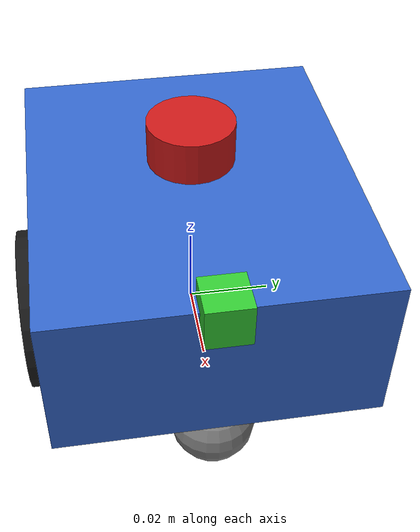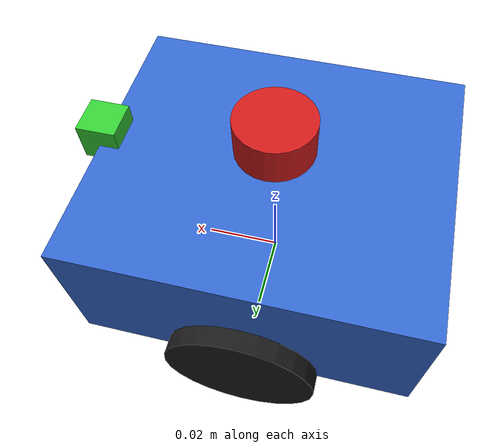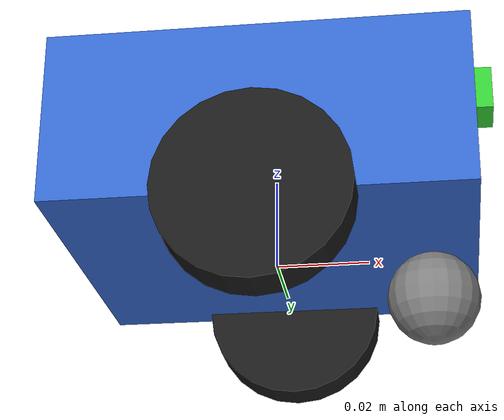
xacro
<?xml version="1.0"?>
<robot name="agv_robot" xmlns:xacro="http://www.ros.org/wiki/xacro">

  <!-- 机器人参数 - 调整为原来的1/4（更合理的尺寸） -->
  <xacro:arg name="robot_id" default="0"/>
  <xacro:property name="robot_id" value="$(arg robot_id)"/>
  <xacro:property name="base_width" value="0.075"/>
  <xacro:property name="base_length" value="0.0875"/>
  <xacro:property name="base_height" value="0.0375"/>
  <xacro:property name="wheel_radius" value="0.02"/>
  <xacro:property name="wheel_width" value="0.01"/>
  <xacro:property name="wheel_separation" value="0.075"/>

  <!-- 基座 -->
  <link name="base_footprint"/>

  <joint name="base_joint" type="fixed">
    <parent link="base_footprint"/>
    <child link="base_link"/>
    <origin xyz="0 0 ${wheel_radius}" rpy="0 0 0"/>
  </joint>

  <link name="base_link">
    <visual>
      <geometry>
        <box size="${base_length} ${base_width} ${base_height}"/>
      </geometry>
      <material name="blue">
        <color rgba="0.2 0.4 0.8 1"/>
      </material>
    </visual>

    <!-- 碰撞体积 - 1/4缩放 -->
    <collision>
      <geometry>
        <cylinder radius="0.0375" length="${base_height}"/>
      </geometry>
    </collision>

    <inertial>
      <mass value="2.0"/>
      <origin xyz="0 0 0" rpy="0 0 0"/>
      <inertia ixx="0.00375" ixy="0" ixz="0" iyy="0.005" iyz="0" izz="0.00625"/>
    </inertial>
  </link>

  <!-- 左轮 -->
  <joint name="left_wheel_joint" type="continuous">
    <parent link="base_link"/>
    <child link="left_wheel"/>
    <origin xyz="0 ${wheel_separation/2} ${-base_height/2}" rpy="-1.5707 0 0"/>
    <axis xyz="0 0 1"/>
  </joint>

  <link name="left_wheel">
    <visual>
      <geometry>
        <cylinder radius="${wheel_radius}" length="${wheel_width}"/>
      </geometry>
      <material name="black">
        <color rgba="0.1 0.1 0.1 1.0"/>
      </material>
    </visual>
    <collision>
      <geometry>
        <cylinder radius="${wheel_radius}" length="${wheel_width}"/>
      </geometry>
    </collision>
    <inertial>
      <mass value="0.2"/>
      <origin xyz="0 0 0" rpy="0 0 0"/>
      <inertia ixx="0.0002" ixy="0" ixz="0" iyy="0.0002" iyz="0" izz="0.0002"/>
    </inertial>
  </link>

  <!-- 右轮 -->
  <joint name="right_wheel_joint" type="continuous">
    <parent link="base_link"/>
    <child link="right_wheel"/>
    <origin xyz="0 ${-wheel_separation/2} ${-base_height/2}" rpy="-1.5707 0 0"/>
    <axis xyz="0 0 1"/>
  </joint>

  <link name="right_wheel">
    <visual>
      <geometry>
        <cylinder radius="${wheel_radius}" length="${wheel_width}"/>
      </geometry>
      <material name="black">
        <color rgba="0.1 0.1 0.1 1.0"/>
      </material>
    </visual>
    <collision>
      <geometry>
        <cylinder radius="${wheel_radius}" length="${wheel_width}"/>
      </geometry>
    </collision>
    <inertial>
      <mass value="0.2"/>
      <origin xyz="0 0 0" rpy="0 0 0"/>
      <inertia ixx="0.0002" ixy="0" ixz="0" iyy="0.0002" iyz="0" izz="0.0002"/>
    </inertial>
  </link>

  <!-- 前支撑轮 -->
  <joint name="caster_wheel_joint" type="fixed">
    <parent link="base_link"/>
    <child link="caster_wheel"/>
    <origin xyz="${base_length/2 - 0.01} 0 ${-base_height/2 - wheel_radius/2}" rpy="0 0 0"/>
  </joint>

  <link name="caster_wheel">
    <visual>
      <geometry>
        <sphere radius="${wheel_radius/2}"/>
      </geometry>
      <material name="grey">
        <color rgba="0.5 0.5 0.5 1.0"/>
      </material>
    </visual>
    <collision>
      <geometry>
        <sphere radius="${wheel_radius/2.5}"/>
      </geometry>
    </collision>
    <inertial>
      <mass value="0.075"/>
      <origin xyz="0 0 0" rpy="0 0 0"/>
      <inertia ixx="0.00001" ixy="0" ixz="0" iyy="0.00001" iyz="0" izz="0.00001"/>
    </inertial>
  </link>

  <!-- 激光雷达 -->
  <joint name="laser_joint" type="fixed">
    <parent link="base_link"/>
    <child link="laser_link"/>
    <origin xyz="0 0 ${base_height/2 + 0.01}" rpy="0 0 0"/>
  </joint>

  <link name="laser_link">
    <visual>
      <geometry>
        <cylinder radius="0.01" length="0.01"/>
      </geometry>
      <material name="red">
        <color rgba="0.8 0.1 0.1 1.0"/>
      </material>
    </visual>
    <collision>
      <geometry>
        <cylinder radius="0.0075" length="0.0075"/>
      </geometry>
    </collision>
    <inertial>
      <mass value="0.0375"/>
      <origin xyz="0 0 0" rpy="0 0 0"/>
      <inertia ixx="0.000002" ixy="0" ixz="0" iyy="0.000002" iyz="0" izz="0.000002"/>
    </inertial>
  </link>

  <!-- 摄像头 -->
  <joint name="camera_joint" type="fixed">
    <parent link="base_link"/>
    <child link="camera_link"/>
    <origin xyz="${base_length/2} 0 ${base_height/2}" rpy="0 0 0"/>
  </joint>

  <link name="camera_link">
    <visual>
      <geometry>
        <box size="0.01 0.01 0.01"/>
      </geometry>
      <material name="green">
        <color rgba="0.2 0.8 0.2 1.0"/>
      </material>
    </visual>
    <collision>
      <geometry>
        <box size="0.0075 0.0075 0.0075"/>
      </geometry>
    </collision>
    <inertial>
      <mass value="0.02"/>
      <origin xyz="0 0 0" rpy="0 0 0"/>
      <inertia ixx="0.000001" ixy="0" ixz="0" iyy="0.000001" iyz="0" izz="0.000001"/>
    </inertial>
  </link>

  <!-- Gazebo插件：差速驱动控制器 -->
  <gazebo>
    <plugin name="differential_drive_controller" filename="libgazebo_ros_diff_drive.so">
      <rosDebugLevel>na</rosDebugLevel>
      <publishWheelTF>false</publishWheelTF>
      <robotNamespace>/robot_${robot_id}</robotNamespace>
      <publishTf>1</publishTf>
      <publishWheelJointState>false</publishWheelJointState>
      <alwaysOn>true</alwaysOn>
      <updateRate>30</updateRate>
      <leftJoint>left_wheel_joint</leftJoint>
      <rightJoint>right_wheel_joint</rightJoint>
      <wheelSeparation>${wheel_separation}</wheelSeparation>
      <wheelDiameter>${2*wheel_radius}</wheelDiameter>
      <broadcastTF>1</broadcastTF>
      <wheelTorque>2.0</wheelTorque>
      <wheelAcceleration>0.6</wheelAcceleration>
      <commandTopic>cmd_vel</commandTopic>
      <odometryFrame>odom</odometryFrame>
      <odometryTopic>odom</odometryTopic>
      <robotBaseFrame>base_footprint</robotBaseFrame>
      <publishOdomTF>true</publishOdomTF>
      <odometrySource>world</odometrySource>
    </plugin>
  </gazebo>

  <!-- Gazebo插件：激光雷达 -->
  <gazebo reference="laser_link">
    <sensor type="ray" name="laser_sensor">
      <pose>0 0 0 0 0 0</pose>
      <visualize>false</visualize>
      <update_rate>10</update_rate>
      <ray>
        <scan>
          <horizontal>
            <samples>180</samples>
            <resolution>1</resolution>
            <min_angle>-1.57</min_angle>
            <max_angle>1.57</max_angle>
          </horizontal>
        </scan>
        <range>
          <min>0.04</min>
          <max>5.0</max>
          <resolution>0.005</resolution>
        </range>
        <noise>
          <type>gaussian</type>
          <mean>0.0</mean>
          <stddev>0.002</stddev>
        </noise>
      </ray>
      <plugin name="gazebo_ros_laser" filename="libgazebo_ros_laser.so">
        <topicName>/robot_${robot_id}/scan</topicName>
        <frameName>laser_link</frameName>
      </plugin>
    </sensor>
  </gazebo>

  <!-- 材质定义 -->
  <gazebo reference="base_link">
    <material>Gazebo/Blue</material>
    <mu1>0.2</mu1>
    <mu2>0.2</mu2>
    <kp>250000.0</kp>
    <kd>40.0</kd>
    <minDepth>0.001</minDepth>
  </gazebo>

  <gazebo reference="left_wheel">
    <material>Gazebo/Black</material>
    <mu1>0.8</mu1>
    <mu2>0.8</mu2>
    <kp>250000.0</kp>
    <kd>40.0</kd>
    <minDepth>0.001</minDepth>
  </gazebo>

  <gazebo reference="right_wheel">
    <material>Gazebo/Black</material>
    <mu1>0.8</mu1>
    <mu2>0.8</mu2>
    <kp>250000.0</kp>
    <kd>40.0</kd>
    <minDepth>0.001</minDepth>
  </gazebo>

  <gazebo reference="caster_wheel">
    <material>Gazebo/Grey</material>
    <mu1>0.05</mu1>
    <mu2>0.05</mu2>
    <kp>1000000.0</kp>
    <kd>10.0</kd>
    <minDepth>0.001</minDepth>
  </gazebo>

</robot>
